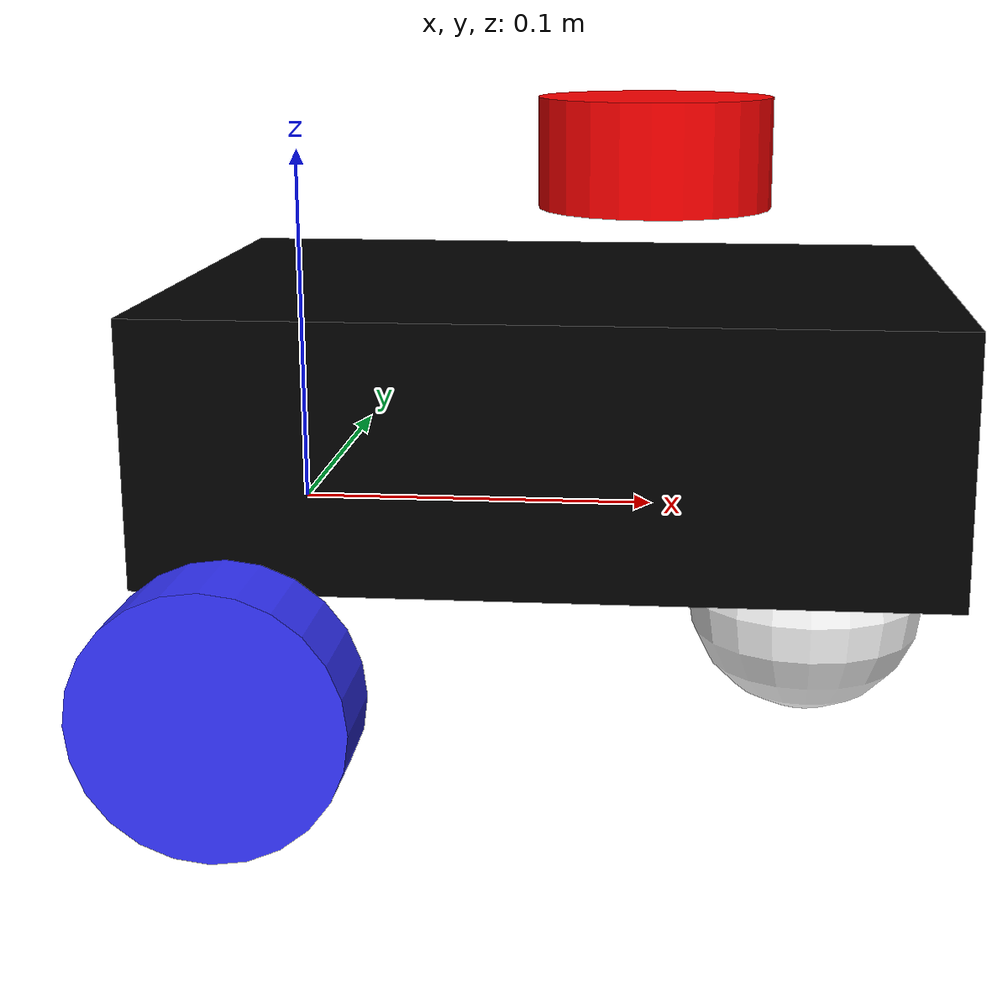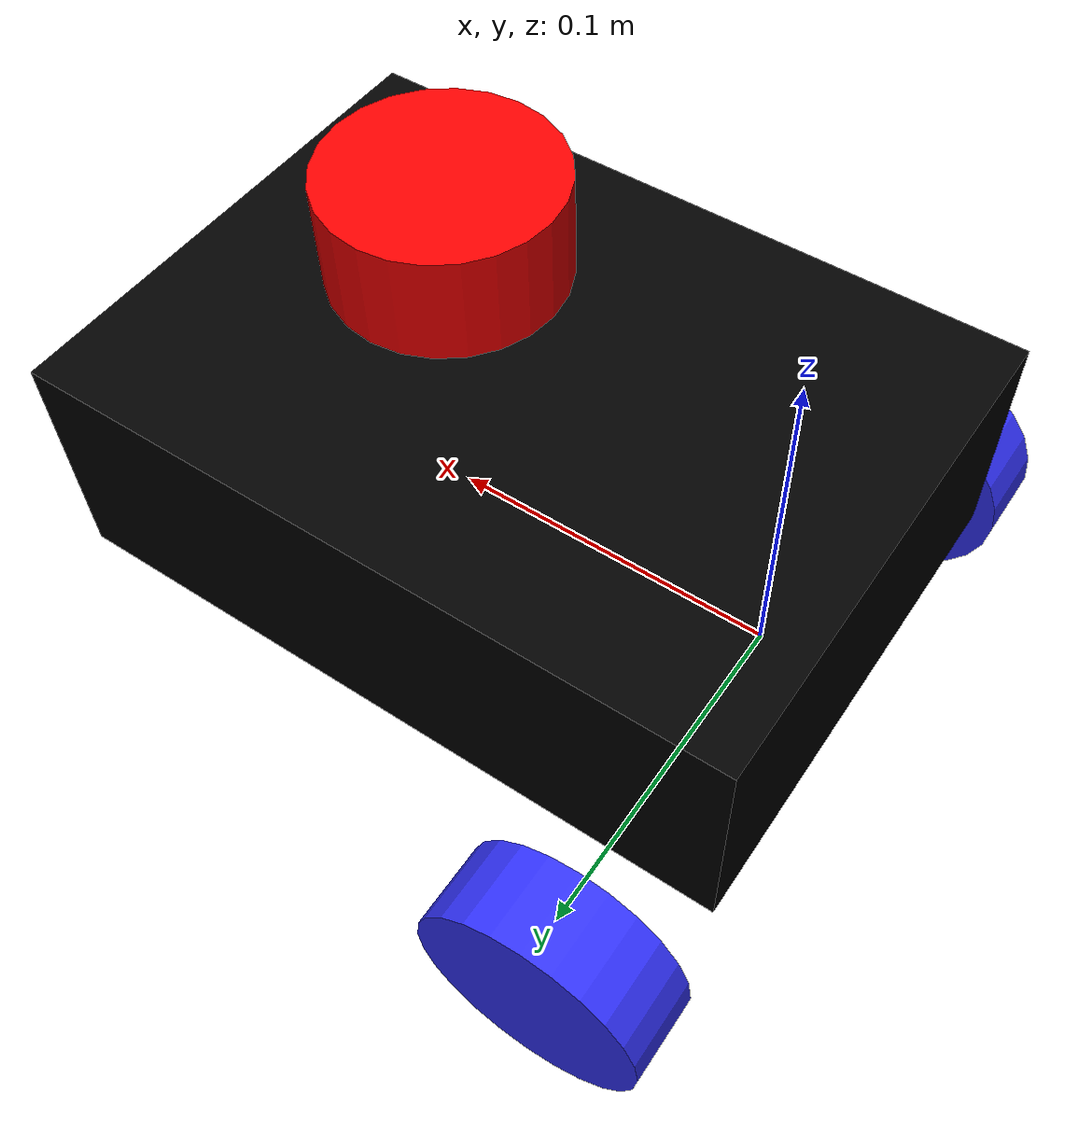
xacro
<?xml version="1.0"?>
<robot name="anviet_688" xmlns:xacro="http://www.ros.org/wiki/xacro">

    <xacro:arg name="use_ros2_control" default="true"/>

    <xacro:include filename="robot_core.xacro" />

    <!-- Switch between ros2_control and Gazebo integrated diff-drive control -->
    <xacro:if value="$(arg use_ros2_control)">
        <xacro:include filename="ros2_control.xacro" />
    </xacro:if>
    <xacro:unless value="$(arg use_ros2_control)">
        <xacro:include filename="gazebo_control.xacro" />
    </xacro:unless>

    <xacro:include filename="gazebo_control.xacro" />
    <xacro:include filename="lidar.xacro" />
    <xacro:include filename="ros2_control.xacro"/>

</robot>

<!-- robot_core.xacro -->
<robot xmlns:xacro="http://www.ros.org/wiki/xacro" >

<xacro:include filename="inertial_macros.xacro" />

      <material name="white">
        <color rgba="1 1 1 1"/>
    </material>

    <material name="orange">
        <color rgba="1 0.3 0.1 1"/>
    </material>

    <material name="blue">
        <color rgba="0.2 0.2 1 1"/>
    </material>

    <material name="black">
        <color rgba="0 0 0 1"/>
    </material>

    <material name="red">
        <color rgba="1 0 0 1"/>
    </material>

 <!--base link -->

    <link name="base_link">

    </link>

 <!--chassis link -->

    <joint name="chassis_joint" type="fixed">
        <parent link="base_link"/>
        <child link="chassis"/>
        <origin xyz="-0.03 0 0"/>
    </joint>

    <link name="chassis">
        <visual>
            <origin xyz="0.105 0 0.03" rpy="0 0 0"/>
            <geometry>
                <box size="0.21 0.15 0.07"/>
            </geometry>
            <material name="black"/>
        </visual>
        <collision>
            <origin xyz="0.105 0 0.03" rpy="0 0 0"/>
            <geometry>
                <box size="0.21 0.15 0.07"/>
            </geometry>
        </collision>
        <xacro:inertial_box mass="0.5" x="0.21" y="0.15" z="0.07">
            <origin xyz="0.15 0 0.03" rpy="0 0 0"/>
        </xacro:inertial_box>

    </link>

    <!-- LEFT WHEEL -->

    <joint name="left_wheel_joint" type="continuous">
        <parent link="base_link"/>
        <child link="left_wheel"/>
        <origin xyz="0 0.1025 -0.025" rpy="-${pi/2} 0 0"/>
        <axis xyz="0 0 1"/>
        <limit effort="0.5" velocity="11.516"/>
    </joint>

    <link name="left_wheel">
        <visual>
            <geometry>
                <cylinder length="0.025" radius="0.034" />
            </geometry>
            <material name="blue"/>
        </visual>
        <collision>
            <geometry>
              <sphere radius="0.034" />
            </geometry>
        </collision>
        <xacro:inertial_cylinder mass="0.1" length="0.025" radius="0.034">
            <origin xyz="0 0 0" rpy="0 0 0"/>
        </xacro:inertial_cylinder>
    </link>

    <!-- RIGHT WHEEL -->

    <joint name="right_wheel_joint" type="continuous">
       <parent link="base_link"/>
        <child link="right_wheel"/>
        <origin xyz="0 -0.1025 -0.025" rpy="${pi/2} 0 0"/>
        <axis xyz="0 0 -1"/>
        <limit effort="0.5" velocity="11.516"/>
    </joint>

    <link name="right_wheel">
        <visual>
            <geometry>
                <cylinder length="0.025" radius="0.034" />
            </geometry>
            <material name="blue"/>
        </visual>
        <collision>
            <geometry>
               <sphere radius="0.034" />
            </geometry>
        </collision>
        <xacro:inertial_cylinder mass="0.1" length="0.025" radius="0.034">
            <origin xyz="0 0 0" rpy="0 0 0"/>
        </xacro:inertial_cylinder>
    </link>

    <!-- CASTER WHEEL -->

    <joint name="caster_wheel_joint" type="fixed">
        <parent link="chassis"/>
        <child link="caster_wheel"/>
        <origin xyz="0.175 0 -0.025" rpy="0 0 0"/>
    </joint>

    <link name="caster_wheel">
        <visual>
            <geometry>
                <sphere radius="0.034" />
            </geometry>
            <material name="white"/>
        </visual>
        <collision>
            <geometry>
                <sphere radius="0.034" />
            </geometry>
        </collision>
        <xacro:inertial_sphere mass="0.1" radius="0.034">
            <origin xyz="0 0 0" rpy="0 0 0"/>
        </xacro:inertial_sphere>
    </link>
    <gazebo reference="caster_wheel">
        <mu1 value="0.0"/>
        <mu2 value="0.0"/>
    </gazebo>

</robot>

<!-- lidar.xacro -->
<robot xmlns:xacro="http://www.ros.org/wiki/xacro" >

    <joint name="laser_joint" type="fixed">
        <parent link="chassis"/>
        <child link="laser_frame"/>
        <origin xyz="0.13 0 0.1" rpy="0 0 0"/>
    </joint>

    <link name="laser_frame">
     <visual>
            <geometry>
                <cylinder radius="0.032" length="0.03"/>
            </geometry>
            <material name="red"/>
        </visual>
        <collision>
            <geometry>
                <cylinder radius="0.032" length="0.03"/>
            </geometry>
        </collision>
        <xacro:inertial_cylinder mass="0.1" length="0.03" radius="0.032">
            <origin xyz="0 0 0" rpy="0 0 0"/>
        </xacro:inertial_cylinder>
    </link>

    <gazebo reference="laser_frame">
        <sensor name="laser" type="gpu_lidar">
            <pose> 0 0 0 0 0 0 </pose>
            <visualize>false</visualize>
            <update_rate>10</update_rate>
            <lidar>
              <scan>
                <horizontal>
                 <samples>360</samples>
                 <min_angle>-3.14</min_angle>
                 <max_angle>3.14</max_angle>
                </horizontal>
             </scan>
             <range>
                <min>0.3</min>
                <max>10</max>
             </range>
            </lidar>
            <topic>scan</topic>
            <gz_frame_id>laser_frame</gz_frame_id>

            <plugin
             filename="gz-sim-sensors-system"
             name="gz::sim::systems::Sensors">
            </plugin>

        </sensor>
    </gazebo>
</robot>
